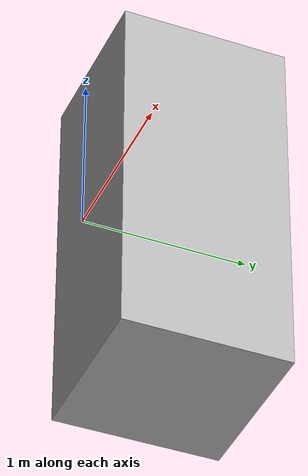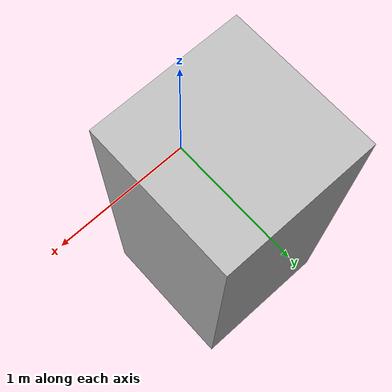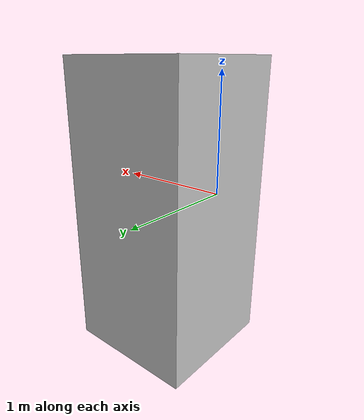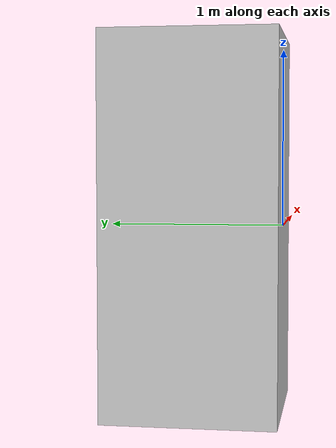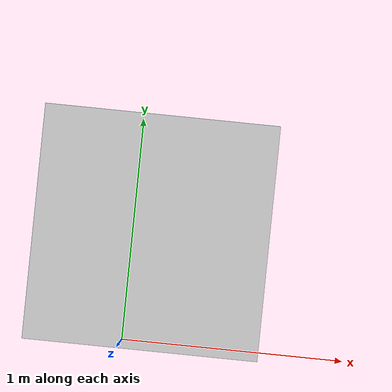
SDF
<?xml version='1.0'?>
<sdf version='1.4'>
	<model name="cylinder">
		<static>true</static>
		<link name="left_wheel">
		<pose>0.1 0.5 0 0 0 0</pose>
		<collision name="collision">
			<geometry>
			<box>
				<size>1 1 2.2</size>
			</box>
			</geometry>
		</collision>
		<visual name="visual">
			<geometry>
			<box>
				<size>1 1 2.2</size>
			</box>
			</geometry>
		</visual>
		</link>
	</model>
</sdf>
